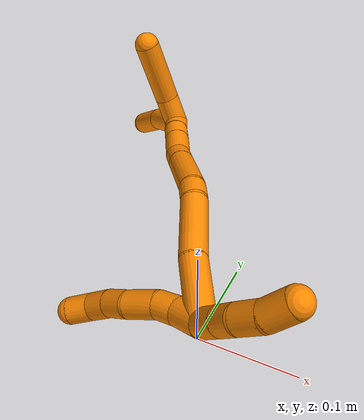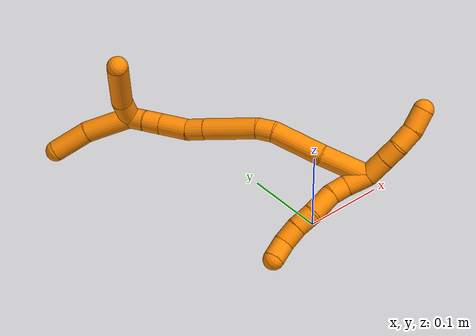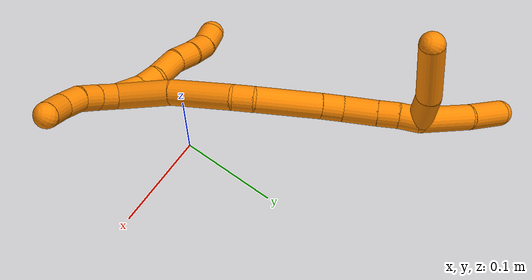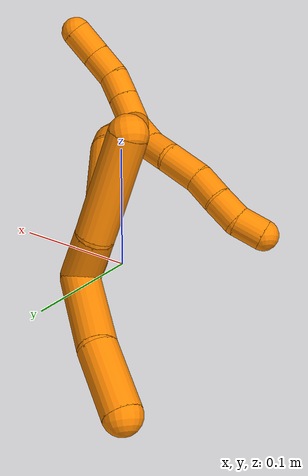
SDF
<sdf version="1.7">
 <world name="default">
  <model name="19">
   <static>0</static>
   <link name="19">
    <collision name="collision-cylinder-e_1_2_8">
     <pose>-0.007769 0.00137 -0.011622 -3.02426 -0.586059 2.75708</pose>
     <geometry><cylinder><radius>0.0125</radius><length>0.028093</length></cylinder></geometry>
     <surface>
      <friction><ode><mu>1.16</mu><mu2>1.16</mu2><slip1>0</slip1><slip2>0</slip2></ode></friction>
      <contact><ode><kp>1e+06</kp><kd>1</kd><max_vel>0</max_vel><min_depth>0.001</min_depth></ode></contact>
     </surface>
    </collision>
    <visual name="visual-cylinder-e_1_2_8">
     <pose>-0.007769 0.00137 -0.011622 -3.02426 -0.586059 2.75708</pose>
     <geometry><cylinder><radius>0.0125</radius><length>0.028093</length></cylinder></geometry>
     <material><ambient>0.996078 0.537255 0 1</ambient></material>
    </visual>
    <collision name="collision-cylinder-e_2_8_9">
     <pose>-0.02268 0.002259 -0.030511 3.07553 -0.77564 -2.98017</pose>
     <geometry><cylinder><radius>0.0125</radius><length>0.020401</length></cylinder></geometry>
     <surface>
      <friction><ode><mu>1.16</mu><mu2>1.16</mu2><slip1>0</slip1><slip2>0</slip2></ode></friction>
      <contact><ode><kp>1e+06</kp><kd>1</kd><max_vel>0</max_vel><min_depth>0.001</min_depth></ode></contact>
     </surface>
    </collision>
    <visual name="visual-cylinder-e_2_8_9">
     <pose>-0.02268 0.002259 -0.030511 3.07553 -0.77564 -2.98017</pose>
     <geometry><cylinder><radius>0.0125</radius><length>0.020401</length></cylinder></geometry>
     <material><ambient>0.996078 0.537255 0 1</ambient></material>
    </visual>
    <collision name="collision-cylinder-e_3_9_10">
     <pose>-0.039426 -0.002815 -0.048915 2.75043 -0.673048 -2.11103</pose>
     <geometry><cylinder><radius>0.0125</radius><length>0.030813</length></cylinder></geometry>
     <surface>
      <friction><ode><mu>1.16</mu><mu2>1.16</mu2><slip1>0</slip1><slip2>0</slip2></ode></friction>
      <contact><ode><kp>1e+06</kp><kd>1</kd><max_vel>0</max_vel><min_depth>0.001</min_depth></ode></contact>
     </surface>
    </collision>
    <visual name="visual-cylinder-e_3_9_10">
     <pose>-0.039426 -0.002815 -0.048915 2.75043 -0.673048 -2.11103</pose>
     <geometry><cylinder><radius>0.0125</radius><length>0.030813</length></cylinder></geometry>
     <material><ambient>0.996078 0.537255 0 1</ambient></material>
    </visual>
    <collision name="collision-cylinder-e_4_10_11">
     <pose>-0.054876 -0.009409 -0.070383 2.95021 -0.507025 -2.43201</pose>
     <geometry><cylinder><radius>0.0125</radius><length>0.024075</length></cylinder></geometry>
     <surface>
      <friction><ode><mu>1.16</mu><mu2>1.16</mu2><slip1>0</slip1><slip2>0</slip2></ode></friction>
      <contact><ode><kp>1e+06</kp><kd>1</kd><max_vel>0</max_vel><min_depth>0.001</min_depth></ode></contact>
     </surface>
    </collision>
    <visual name="visual-cylinder-e_4_10_11">
     <pose>-0.054876 -0.009409 -0.070383 2.95021 -0.507025 -2.43201</pose>
     <geometry><cylinder><radius>0.0125</radius><length>0.024075</length></cylinder></geometry>
     <material><ambient>0.996078 0.537255 0 1</ambient></material>
    </visual>
    <collision name="collision-cylinder-e_5_11_12">
     <pose>-0.065944 -0.015256 -0.090439 2.76508 -0.463269 -1.78274</pose>
     <geometry><cylinder><radius>0.0125</radius><length>0.023379</length></cylinder></geometry>
     <surface>
      <friction><ode><mu>1.16</mu><mu2>1.16</mu2><slip1>0</slip1><slip2>0</slip2></ode></friction>
      <contact><ode><kp>1e+06</kp><kd>1</kd><max_vel>0</max_vel><min_depth>0.001</min_depth></ode></contact>
     </surface>
    </collision>
    <visual name="visual-cylinder-e_5_11_12">
     <pose>-0.065944 -0.015256 -0.090439 2.76508 -0.463269 -1.78274</pose>
     <geometry><cylinder><radius>0.0125</radius><length>0.023379</length></cylinder></geometry>
     <material><ambient>0.996078 0.537255 0 1</ambient></material>
    </visual>
    <collision name="collision-cylinder-e_6_12_6">
     <pose>-0.078343 -0.024848 -0.10727 2.46154 -0.665521 -1.54748</pose>
     <geometry><cylinder><radius>0.0125</radius><length>0.023238</length></cylinder></geometry>
     <surface>
      <friction><ode><mu>1.16</mu><mu2>1.16</mu2><slip1>0</slip1><slip2>0</slip2></ode></friction>
      <contact><ode><kp>1e+06</kp><kd>1</kd><max_vel>0</max_vel><min_depth>0.001</min_depth></ode></contact>
     </surface>
    </collision>
    <visual name="visual-cylinder-e_6_12_6">
     <pose>-0.078343 -0.024848 -0.10727 2.46154 -0.665521 -1.54748</pose>
     <geometry><cylinder><radius>0.0125</radius><length>0.023238</length></cylinder></geometry>
     <material><ambient>0.996078 0.537255 0 1</ambient></material>
    </visual>
    <collision name="collision-cylinder-e_1_2_13">
     <pose>0.002802 0.001803 0.013222 -0.13552 0.206964 -0.014096</pose>
     <geometry><cylinder><radius>0.0125</radius><length>0.02727</length></cylinder></geometry>
     <surface>
      <friction><ode><mu>1.16</mu><mu2>1.16</mu2><slip1>0</slip1><slip2>0</slip2></ode></friction>
      <contact><ode><kp>1e+06</kp><kd>1</kd><max_vel>0</max_vel><min_depth>0.001</min_depth></ode></contact>
     </surface>
    </collision>
    <visual name="visual-cylinder-e_1_2_13">
     <pose>0.002802 0.001803 0.013222 -0.13552 0.206964 -0.014096</pose>
     <geometry><cylinder><radius>0.0125</radius><length>0.02727</length></cylinder></geometry>
     <material><ambient>0.996078 0.537255 0 1</ambient></material>
    </visual>
    <collision name="collision-cylinder-e_2_13_14">
     <pose>0.007892 0.005229 0.036821 -0.155203 0.214502 -0.016743</pose>
     <geometry><cylinder><radius>0.0125</radius><length>0.021502</length></cylinder></geometry>
     <surface>
      <friction><ode><mu>1.16</mu><mu2>1.16</mu2><slip1>0</slip1><slip2>0</slip2></ode></friction>
      <contact><ode><kp>1e+06</kp><kd>1</kd><max_vel>0</max_vel><min_depth>0.001</min_depth></ode></contact>
     </surface>
    </collision>
    <visual name="visual-cylinder-e_2_13_14">
     <pose>0.007892 0.005229 0.036821 -0.155203 0.214502 -0.016743</pose>
     <geometry><cylinder><radius>0.0125</radius><length>0.021502</length></cylinder></geometry>
     <material><ambient>0.996078 0.537255 0 1</ambient></material>
    </visual>
    <collision name="collision-cylinder-e_3_14_15">
     <pose>0.015216 0.010308 0.057877 -0.312969 0.42177 -0.067523</pose>
     <geometry><cylinder><radius>0.0125</radius><length>0.024601</length></cylinder></geometry>
     <surface>
      <friction><ode><mu>1.16</mu><mu2>1.16</mu2><slip1>0</slip1><slip2>0</slip2></ode></friction>
      <contact><ode><kp>1e+06</kp><kd>1</kd><max_vel>0</max_vel><min_depth>0.001</min_depth></ode></contact>
     </surface>
    </collision>
    <visual name="visual-cylinder-e_3_14_15">
     <pose>0.015216 0.010308 0.057877 -0.312969 0.42177 -0.067523</pose>
     <geometry><cylinder><radius>0.0125</radius><length>0.024601</length></cylinder></geometry>
     <material><ambient>0.996078 0.537255 0 1</ambient></material>
    </visual>
    <collision name="collision-cylinder-e_4_15_5">
     <pose>0.024236 0.020319 0.079436 -0.542192 0.303971 -0.085091</pose>
     <geometry><cylinder><radius>0.0125</radius><length>0.026628</length></cylinder></geometry>
     <surface>
      <friction><ode><mu>1.16</mu><mu2>1.16</mu2><slip1>0</slip1><slip2>0</slip2></ode></friction>
      <contact><ode><kp>1e+06</kp><kd>1</kd><max_vel>0</max_vel><min_depth>0.001</min_depth></ode></contact>
     </surface>
    </collision>
    <visual name="visual-cylinder-e_4_15_5">
     <pose>0.024236 0.020319 0.079436 -0.542192 0.303971 -0.085091</pose>
     <geometry><cylinder><radius>0.0125</radius><length>0.026628</length></cylinder></geometry>
     <material><ambient>0.996078 0.537255 0 1</ambient></material>
    </visual>
    <collision name="collision-cylinder-e_1_2_16">
     <pose>-0.012884 0.022976 -0.011428 -2.03234 -0.465307 0.73063</pose>
     <geometry><cylinder><radius>0.0125</radius><length>0.057427</length></cylinder></geometry>
     <surface>
      <friction><ode><mu>1.16</mu><mu2>1.16</mu2><slip1>0</slip1><slip2>0</slip2></ode></friction>
      <contact><ode><kp>1e+06</kp><kd>1</kd><max_vel>0</max_vel><min_depth>0.001</min_depth></ode></contact>
     </surface>
    </collision>
    <visual name="visual-cylinder-e_1_2_16">
     <pose>-0.012884 0.022976 -0.011428 -2.03234 -0.465307 0.73063</pose>
     <geometry><cylinder><radius>0.0125</radius><length>0.057427</length></cylinder></geometry>
     <material><ambient>0.996078 0.537255 0 1</ambient></material>
    </visual>
    <collision name="collision-cylinder-e_2_16_17">
     <pose>-0.035533 0.072202 -0.036122 -2.03875 -0.320566 0.514071</pose>
     <geometry><cylinder><radius>0.0125</radius><length>0.061982</length></cylinder></geometry>
     <surface>
      <friction><ode><mu>1.16</mu><mu2>1.16</mu2><slip1>0</slip1><slip2>0</slip2></ode></friction>
      <contact><ode><kp>1e+06</kp><kd>1</kd><max_vel>0</max_vel><min_depth>0.001</min_depth></ode></contact>
     </surface>
    </collision>
    <visual name="visual-cylinder-e_2_16_17">
     <pose>-0.035533 0.072202 -0.036122 -2.03875 -0.320566 0.514071</pose>
     <geometry><cylinder><radius>0.0125</radius><length>0.061982</length></cylinder></geometry>
     <material><ambient>0.996078 0.537255 0 1</ambient></material>
    </visual>
    <collision name="collision-cylinder-e_3_17_18">
     <pose>-0.048283 0.105689 -0.055813 -2.29682 -0.299205 0.647168</pose>
     <geometry><cylinder><radius>0.0125</radius><length>0.020253</length></cylinder></geometry>
     <surface>
      <friction><ode><mu>1.16</mu><mu2>1.16</mu2><slip1>0</slip1><slip2>0</slip2></ode></friction>
      <contact><ode><kp>1e+06</kp><kd>1</kd><max_vel>0</max_vel><min_depth>0.001</min_depth></ode></contact>
     </surface>
    </collision>
    <visual name="visual-cylinder-e_3_17_18">
     <pose>-0.048283 0.105689 -0.055813 -2.29682 -0.299205 0.647168</pose>
     <geometry><cylinder><radius>0.0125</radius><length>0.020253</length></cylinder></geometry>
     <material><ambient>0.996078 0.537255 0 1</ambient></material>
    </visual>
    <collision name="collision-cylinder-e_4_18_19">
     <pose>-0.059709 0.130609 -0.087563 -2.53206 -0.266749 0.806323</pose>
     <geometry><cylinder><radius>0.0125</radius><length>0.064043</length></cylinder></geometry>
     <surface>
      <friction><ode><mu>1.16</mu><mu2>1.16</mu2><slip1>0</slip1><slip2>0</slip2></ode></friction>
      <contact><ode><kp>1e+06</kp><kd>1</kd><max_vel>0</max_vel><min_depth>0.001</min_depth></ode></contact>
     </surface>
    </collision>
    <visual name="visual-cylinder-e_4_18_19">
     <pose>-0.059709 0.130609 -0.087563 -2.53206 -0.266749 0.806323</pose>
     <geometry><cylinder><radius>0.0125</radius><length>0.064043</length></cylinder></geometry>
     <material><ambient>0.996078 0.537255 0 1</ambient></material>
    </visual>
    <collision name="collision-cylinder-e_5_19_20">
     <pose>-0.07076 0.154162 -0.12169 -2.55337 -0.24193 0.763294</pose>
     <geometry><cylinder><radius>0.0125</radius><length>0.02179</length></cylinder></geometry>
     <surface>
      <friction><ode><mu>1.16</mu><mu2>1.16</mu2><slip1>0</slip1><slip2>0</slip2></ode></friction>
      <contact><ode><kp>1e+06</kp><kd>1</kd><max_vel>0</max_vel><min_depth>0.001</min_depth></ode></contact>
     </surface>
    </collision>
    <visual name="visual-cylinder-e_5_19_20">
     <pose>-0.07076 0.154162 -0.12169 -2.55337 -0.24193 0.763294</pose>
     <geometry><cylinder><radius>0.0125</radius><length>0.02179</length></cylinder></geometry>
     <material><ambient>0.996078 0.537255 0 1</ambient></material>
    </visual>
    <collision name="collision-cylinder-e_6_20_21">
     <pose>-0.077697 0.171963 -0.141342 -2.30887 -0.262126 0.579404</pose>
     <geometry><cylinder><radius>0.0125</radius><length>0.0334</length></cylinder></geometry>
     <surface>
      <friction><ode><mu>1.16</mu><mu2>1.16</mu2><slip1>0</slip1><slip2>0</slip2></ode></friction>
      <contact><ode><kp>1e+06</kp><kd>1</kd><max_vel>0</max_vel><min_depth>0.001</min_depth></ode></contact>
     </surface>
    </collision>
    <visual name="visual-cylinder-e_6_20_21">
     <pose>-0.077697 0.171963 -0.141342 -2.30887 -0.262126 0.579404</pose>
     <geometry><cylinder><radius>0.0125</radius><length>0.0334</length></cylinder></geometry>
     <material><ambient>0.996078 0.537255 0 1</ambient></material>
    </visual>
    <collision name="collision-cylinder-e_7_21_22">
     <pose>-0.084908 0.191213 -0.158835 -2.30766 -0.283866 0.624129</pose>
     <geometry><cylinder><radius>0.0125</radius><length>0.020586</length></cylinder></geometry>
     <surface>
      <friction><ode><mu>1.16</mu><mu2>1.16</mu2><slip1>0</slip1><slip2>0</slip2></ode></friction>
      <contact><ode><kp>1e+06</kp><kd>1</kd><max_vel>0</max_vel><min_depth>0.001</min_depth></ode></contact>
     </surface>
    </collision>
    <visual name="visual-cylinder-e_7_21_22">
     <pose>-0.084908 0.191213 -0.158835 -2.30766 -0.283866 0.624129</pose>
     <geometry><cylinder><radius>0.0125</radius><length>0.020586</length></cylinder></geometry>
     <material><ambient>0.996078 0.537255 0 1</ambient></material>
    </visual>
    <collision name="collision-cylinder-e_8_22_1">
     <pose>-0.08964 0.205834 -0.172439 -2.33242 -0.181253 0.418235</pose>
     <geometry><cylinder><radius>0.0125</radius><length>0.020518</length></cylinder></geometry>
     <surface>
      <friction><ode><mu>1.16</mu><mu2>1.16</mu2><slip1>0</slip1><slip2>0</slip2></ode></friction>
      <contact><ode><kp>1e+06</kp><kd>1</kd><max_vel>0</max_vel><min_depth>0.001</min_depth></ode></contact>
     </surface>
    </collision>
    <visual name="visual-cylinder-e_8_22_1">
     <pose>-0.08964 0.205834 -0.172439 -2.33242 -0.181253 0.418235</pose>
     <geometry><cylinder><radius>0.0125</radius><length>0.020518</length></cylinder></geometry>
     <material><ambient>0.996078 0.537255 0 1</ambient></material>
    </visual>
    <collision name="collision-cylinder-e_1_1_23">
     <pose>-0.103772 0.219207 -0.170606 -0.603964 -0.854726 0.281862</pose>
     <geometry><cylinder><radius>0.0125</radius><length>0.032564</length></cylinder></geometry>
     <surface>
      <friction><ode><mu>1.16</mu><mu2>1.16</mu2><slip1>0</slip1><slip2>0</slip2></ode></friction>
      <contact><ode><kp>1e+06</kp><kd>1</kd><max_vel>0</max_vel><min_depth>0.001</min_depth></ode></contact>
     </surface>
    </collision>
    <visual name="visual-cylinder-e_1_1_23">
     <pose>-0.103772 0.219207 -0.170606 -0.603964 -0.854726 0.281862</pose>
     <geometry><cylinder><radius>0.0125</radius><length>0.032564</length></cylinder></geometry>
     <material><ambient>0.996078 0.537255 0 1</ambient></material>
    </visual>
    <collision name="collision-cylinder-e_2_23_4">
     <pose>-0.138944 0.233247 -0.138368 -0.327745 -0.746183 0.129268</pose>
     <geometry><cylinder><radius>0.0125</radius><length>0.067436</length></cylinder></geometry>
     <surface>
      <friction><ode><mu>1.16</mu><mu2>1.16</mu2><slip1>0</slip1><slip2>0</slip2></ode></friction>
      <contact><ode><kp>1e+06</kp><kd>1</kd><max_vel>0</max_vel><min_depth>0.001</min_depth></ode></contact>
     </surface>
    </collision>
    <visual name="visual-cylinder-e_2_23_4">
     <pose>-0.138944 0.233247 -0.138368 -0.327745 -0.746183 0.129268</pose>
     <geometry><cylinder><radius>0.0125</radius><length>0.067436</length></cylinder></geometry>
     <material><ambient>0.996078 0.537255 0 1</ambient></material>
    </visual>
    <collision name="collision-cylinder-e_1_1_24">
     <pose>-0.100805 0.220739 -0.204255 -2.84473 -0.344183 1.7207</pose>
     <geometry><cylinder><radius>0.0125</radius><length>0.055216</length></cylinder></geometry>
     <surface>
      <friction><ode><mu>1.16</mu><mu2>1.16</mu2><slip1>0</slip1><slip2>0</slip2></ode></friction>
      <contact><ode><kp>1e+06</kp><kd>1</kd><max_vel>0</max_vel><min_depth>0.001</min_depth></ode></contact>
     </surface>
    </collision>
    <visual name="visual-cylinder-e_1_1_24">
     <pose>-0.100805 0.220739 -0.204255 -2.84473 -0.344183 1.7207</pose>
     <geometry><cylinder><radius>0.0125</radius><length>0.055216</length></cylinder></geometry>
     <material><ambient>0.996078 0.537255 0 1</ambient></material>
    </visual>
    <collision name="collision-cylinder-e_2_24_3">
     <pose>-0.117218 0.229828 -0.250293 -3.07153 -0.322529 2.71721</pose>
     <geometry><cylinder><radius>0.0125</radius><length>0.044784</length></cylinder></geometry>
     <surface>
      <friction><ode><mu>1.16</mu><mu2>1.16</mu2><slip1>0</slip1><slip2>0</slip2></ode></friction>
      <contact><ode><kp>1e+06</kp><kd>1</kd><max_vel>0</max_vel><min_depth>0.001</min_depth></ode></contact>
     </surface>
    </collision>
    <visual name="visual-cylinder-e_2_24_3">
     <pose>-0.117218 0.229828 -0.250293 -3.07153 -0.322529 2.71721</pose>
     <geometry><cylinder><radius>0.0125</radius><length>0.044784</length></cylinder></geometry>
     <material><ambient>0.996078 0.537255 0 1</ambient></material>
    </visual>
    <collision name="collision-sphere-3">
     <pose>-0.124316 0.231315 -0.271478 0 -0 0</pose>
     <geometry><sphere><radius>0.0125</radius></sphere></geometry>
     <surface>
      <friction><ode><mu>1.16</mu><mu2>1.16</mu2><slip1>0</slip1><slip2>0</slip2></ode></friction>
      <contact><ode><kp>1e+06</kp><kd>1</kd><max_vel>0</max_vel><min_depth>0.001</min_depth></ode></contact>
     </surface>
    </collision>
    <visual name="visual-sphere-3">
     <pose>-0.124316 0.231315 -0.271478 0 -0 0</pose>
     <geometry><sphere><radius>0.0125</radius></sphere></geometry>
     <material><ambient>0.996078 0.537255 0 1</ambient></material>
    </visual>
    <collision name="collision-sphere-24">
     <pose>-0.110121 0.228342 -0.229108 0 -0 0</pose>
     <geometry><sphere><radius>0.0125</radius></sphere></geometry>
     <surface>
      <friction><ode><mu>1.16</mu><mu2>1.16</mu2><slip1>0</slip1><slip2>0</slip2></ode></friction>
      <contact><ode><kp>1e+06</kp><kd>1</kd><max_vel>0</max_vel><min_depth>0.001</min_depth></ode></contact>
     </surface>
    </collision>
    <visual name="visual-sphere-24">
     <pose>-0.110121 0.228342 -0.229108 0 -0 0</pose>
     <geometry><sphere><radius>0.0125</radius></sphere></geometry>
     <material><ambient>0.996078 0.537255 0 1</ambient></material>
    </visual>
    <collision name="collision-sphere-4">
     <pose>-0.161834 0.241217 -0.114927 0 -0 0</pose>
     <geometry><sphere><radius>0.0125</radius></sphere></geometry>
     <surface>
      <friction><ode><mu>1.16</mu><mu2>1.16</mu2><slip1>0</slip1><slip2>0</slip2></ode></friction>
      <contact><ode><kp>1e+06</kp><kd>1</kd><max_vel>0</max_vel><min_depth>0.001</min_depth></ode></contact>
     </surface>
    </collision>
    <visual name="visual-sphere-4">
     <pose>-0.161834 0.241217 -0.114927 0 -0 0</pose>
     <geometry><sphere><radius>0.0125</radius></sphere></geometry>
     <material><ambient>0.996078 0.537255 0 1</ambient></material>
    </visual>
    <collision name="collision-sphere-23">
     <pose>-0.116055 0.225277 -0.161809 0 -0 0</pose>
     <geometry><sphere><radius>0.0125</radius></sphere></geometry>
     <surface>
      <friction><ode><mu>1.16</mu><mu2>1.16</mu2><slip1>0</slip1><slip2>0</slip2></ode></friction>
      <contact><ode><kp>1e+06</kp><kd>1</kd><max_vel>0</max_vel><min_depth>0.001</min_depth></ode></contact>
     </surface>
    </collision>
    <visual name="visual-sphere-23">
     <pose>-0.116055 0.225277 -0.161809 0 -0 0</pose>
     <geometry><sphere><radius>0.0125</radius></sphere></geometry>
     <material><ambient>0.996078 0.537255 0 1</ambient></material>
    </visual>
    <collision name="collision-sphere-1">
     <pose>-0.091489 0.213137 -0.179403 0 -0 0</pose>
     <geometry><sphere><radius>0.0125</radius></sphere></geometry>
     <surface>
      <friction><ode><mu>1.16</mu><mu2>1.16</mu2><slip1>0</slip1><slip2>0</slip2></ode></friction>
      <contact><ode><kp>1e+06</kp><kd>1</kd><max_vel>0</max_vel><min_depth>0.001</min_depth></ode></contact>
     </surface>
    </collision>
    <visual name="visual-sphere-1">
     <pose>-0.091489 0.213137 -0.179403 0 -0 0</pose>
     <geometry><sphere><radius>0.0125</radius></sphere></geometry>
     <material><ambient>0.996078 0.537255 0 1</ambient></material>
    </visual>
    <collision name="collision-sphere-22">
     <pose>-0.087791 0.198531 -0.165475 0 -0 0</pose>
     <geometry><sphere><radius>0.0125</radius></sphere></geometry>
     <surface>
      <friction><ode><mu>1.16</mu><mu2>1.16</mu2><slip1>0</slip1><slip2>0</slip2></ode></friction>
      <contact><ode><kp>1e+06</kp><kd>1</kd><max_vel>0</max_vel><min_depth>0.001</min_depth></ode></contact>
     </surface>
    </collision>
    <visual name="visual-sphere-22">
     <pose>-0.087791 0.198531 -0.165475 0 -0 0</pose>
     <geometry><sphere><radius>0.0125</radius></sphere></geometry>
     <material><ambient>0.996078 0.537255 0 1</ambient></material>
    </visual>
    <collision name="collision-sphere-21">
     <pose>-0.082025 0.183895 -0.152195 0 -0 0</pose>
     <geometry><sphere><radius>0.0125</radius></sphere></geometry>
     <surface>
      <friction><ode><mu>1.16</mu><mu2>1.16</mu2><slip1>0</slip1><slip2>0</slip2></ode></friction>
      <contact><ode><kp>1e+06</kp><kd>1</kd><max_vel>0</max_vel><min_depth>0.001</min_depth></ode></contact>
     </surface>
    </collision>
    <visual name="visual-sphere-21">
     <pose>-0.082025 0.183895 -0.152195 0 -0 0</pose>
     <geometry><sphere><radius>0.0125</radius></sphere></geometry>
     <material><ambient>0.996078 0.537255 0 1</ambient></material>
    </visual>
    <collision name="collision-sphere-12">
     <pose>-0.071168 -0.019101 -0.100164 0 -0 0</pose>
     <geometry><sphere><radius>0.0125</radius></sphere></geometry>
     <surface>
      <friction><ode><mu>1.16</mu><mu2>1.16</mu2><slip1>0</slip1><slip2>0</slip2></ode></friction>
      <contact><ode><kp>1e+06</kp><kd>1</kd><max_vel>0</max_vel><min_depth>0.001</min_depth></ode></contact>
     </surface>
    </collision>
    <visual name="visual-sphere-12">
     <pose>-0.071168 -0.019101 -0.100164 0 -0 0</pose>
     <geometry><sphere><radius>0.0125</radius></sphere></geometry>
     <material><ambient>0.996078 0.537255 0 1</ambient></material>
    </visual>
    <collision name="collision-sphere-11">
     <pose>-0.060721 -0.011411 -0.080714 0 -0 0</pose>
     <geometry><sphere><radius>0.0125</radius></sphere></geometry>
     <surface>
      <friction><ode><mu>1.16</mu><mu2>1.16</mu2><slip1>0</slip1><slip2>0</slip2></ode></friction>
      <contact><ode><kp>1e+06</kp><kd>1</kd><max_vel>0</max_vel><min_depth>0.001</min_depth></ode></contact>
     </surface>
    </collision>
    <visual name="visual-sphere-11">
     <pose>-0.060721 -0.011411 -0.080714 0 -0 0</pose>
     <geometry><sphere><radius>0.0125</radius></sphere></geometry>
     <material><ambient>0.996078 0.537255 0 1</ambient></material>
    </visual>
    <collision name="collision-sphere-10">
     <pose>-0.04903 -0.007408 -0.060052 0 -0 0</pose>
     <geometry><sphere><radius>0.0125</radius></sphere></geometry>
     <surface>
      <friction><ode><mu>1.16</mu><mu2>1.16</mu2><slip1>0</slip1><slip2>0</slip2></ode></friction>
      <contact><ode><kp>1e+06</kp><kd>1</kd><max_vel>0</max_vel><min_depth>0.001</min_depth></ode></contact>
     </surface>
    </collision>
    <visual name="visual-sphere-10">
     <pose>-0.04903 -0.007408 -0.060052 0 -0 0</pose>
     <geometry><sphere><radius>0.0125</radius></sphere></geometry>
     <material><ambient>0.996078 0.537255 0 1</ambient></material>
    </visual>
    <collision name="collision-sphere-9">
     <pose>-0.029822 0.001778 -0.037779 0 -0 0</pose>
     <geometry><sphere><radius>0.0125</radius></sphere></geometry>
     <surface>
      <friction><ode><mu>1.16</mu><mu2>1.16</mu2><slip1>0</slip1><slip2>0</slip2></ode></friction>
      <contact><ode><kp>1e+06</kp><kd>1</kd><max_vel>0</max_vel><min_depth>0.001</min_depth></ode></contact>
     </surface>
    </collision>
    <visual name="visual-sphere-9">
     <pose>-0.029822 0.001778 -0.037779 0 -0 0</pose>
     <geometry><sphere><radius>0.0125</radius></sphere></geometry>
     <material><ambient>0.996078 0.537255 0 1</ambient></material>
    </visual>
    <collision name="collision-sphere-2">
     <geometry><sphere><radius>0.0125</radius></sphere></geometry>
     <surface>
      <friction><ode><mu>1.16</mu><mu2>1.16</mu2><slip1>0</slip1><slip2>0</slip2></ode></friction>
      <contact><ode><kp>1e+06</kp><kd>1</kd><max_vel>0</max_vel><min_depth>0.001</min_depth></ode></contact>
     </surface>
    </collision>
    <visual name="visual-sphere-2">
     <geometry><sphere><radius>0.0125</radius></sphere></geometry>
     <material><ambient>0.996078 0.537255 0 1</ambient></material>
    </visual>
    <collision name="collision-sphere-19">
     <pose>-0.06815 0.148292 -0.11289 0 -0 0</pose>
     <geometry><sphere><radius>0.0125</radius></sphere></geometry>
     <surface>
      <friction><ode><mu>1.16</mu><mu2>1.16</mu2><slip1>0</slip1><slip2>0</slip2></ode></friction>
      <contact><ode><kp>1e+06</kp><kd>1</kd><max_vel>0</max_vel><min_depth>0.001</min_depth></ode></contact>
     </surface>
    </collision>
    <visual name="visual-sphere-19">
     <pose>-0.06815 0.148292 -0.11289 0 -0 0</pose>
     <geometry><sphere><radius>0.0125</radius></sphere></geometry>
     <material><ambient>0.996078 0.537255 0 1</ambient></material>
    </visual>
    <collision name="collision-sphere-8">
     <pose>-0.015538 0.00274 -0.023244 0 -0 0</pose>
     <geometry><sphere><radius>0.0125</radius></sphere></geometry>
     <surface>
      <friction><ode><mu>1.16</mu><mu2>1.16</mu2><slip1>0</slip1><slip2>0</slip2></ode></friction>
      <contact><ode><kp>1e+06</kp><kd>1</kd><max_vel>0</max_vel><min_depth>0.001</min_depth></ode></contact>
     </surface>
    </collision>
    <visual name="visual-sphere-8">
     <pose>-0.015538 0.00274 -0.023244 0 -0 0</pose>
     <geometry><sphere><radius>0.0125</radius></sphere></geometry>
     <material><ambient>0.996078 0.537255 0 1</ambient></material>
    </visual>
    <collision name="collision-sphere-6">
     <pose>-0.085517 -0.030596 -0.114377 0 -0 0</pose>
     <geometry><sphere><radius>0.0125</radius></sphere></geometry>
     <surface>
      <friction><ode><mu>1.16</mu><mu2>1.16</mu2><slip1>0</slip1><slip2>0</slip2></ode></friction>
      <contact><ode><kp>1e+06</kp><kd>1</kd><max_vel>0</max_vel><min_depth>0.001</min_depth></ode></contact>
     </surface>
    </collision>
    <visual name="visual-sphere-6">
     <pose>-0.085517 -0.030596 -0.114377 0 -0 0</pose>
     <geometry><sphere><radius>0.0125</radius></sphere></geometry>
     <material><ambient>0.996078 0.537255 0 1</ambient></material>
    </visual>
    <collision name="collision-sphere-13">
     <pose>0.005604 0.003606 0.026443 0 -0 0</pose>
     <geometry><sphere><radius>0.0125</radius></sphere></geometry>
     <surface>
      <friction><ode><mu>1.16</mu><mu2>1.16</mu2><slip1>0</slip1><slip2>0</slip2></ode></friction>
      <contact><ode><kp>1e+06</kp><kd>1</kd><max_vel>0</max_vel><min_depth>0.001</min_depth></ode></contact>
     </surface>
    </collision>
    <visual name="visual-sphere-13">
     <pose>0.005604 0.003606 0.026443 0 -0 0</pose>
     <geometry><sphere><radius>0.0125</radius></sphere></geometry>
     <material><ambient>0.996078 0.537255 0 1</ambient></material>
    </visual>
    <collision name="collision-sphere-14">
     <pose>0.010181 0.006853 0.047199 0 -0 0</pose>
     <geometry><sphere><radius>0.0125</radius></sphere></geometry>
     <surface>
      <friction><ode><mu>1.16</mu><mu2>1.16</mu2><slip1>0</slip1><slip2>0</slip2></ode></friction>
      <contact><ode><kp>1e+06</kp><kd>1</kd><max_vel>0</max_vel><min_depth>0.001</min_depth></ode></contact>
     </surface>
    </collision>
    <visual name="visual-sphere-14">
     <pose>0.010181 0.006853 0.047199 0 -0 0</pose>
     <geometry><sphere><radius>0.0125</radius></sphere></geometry>
     <material><ambient>0.996078 0.537255 0 1</ambient></material>
    </visual>
    <collision name="collision-sphere-15">
     <pose>0.020251 0.013764 0.068554 0 -0 0</pose>
     <geometry><sphere><radius>0.0125</radius></sphere></geometry>
     <surface>
      <friction><ode><mu>1.16</mu><mu2>1.16</mu2><slip1>0</slip1><slip2>0</slip2></ode></friction>
      <contact><ode><kp>1e+06</kp><kd>1</kd><max_vel>0</max_vel><min_depth>0.001</min_depth></ode></contact>
     </surface>
    </collision>
    <visual name="visual-sphere-15">
     <pose>0.020251 0.013764 0.068554 0 -0 0</pose>
     <geometry><sphere><radius>0.0125</radius></sphere></geometry>
     <material><ambient>0.996078 0.537255 0 1</ambient></material>
    </visual>
    <collision name="collision-sphere-5">
     <pose>0.028221 0.026874 0.090317 0 -0 0</pose>
     <geometry><sphere><radius>0.0125</radius></sphere></geometry>
     <surface>
      <friction><ode><mu>1.16</mu><mu2>1.16</mu2><slip1>0</slip1><slip2>0</slip2></ode></friction>
      <contact><ode><kp>1e+06</kp><kd>1</kd><max_vel>0</max_vel><min_depth>0.001</min_depth></ode></contact>
     </surface>
    </collision>
    <visual name="visual-sphere-5">
     <pose>0.028221 0.026874 0.090317 0 -0 0</pose>
     <geometry><sphere><radius>0.0125</radius></sphere></geometry>
     <material><ambient>0.996078 0.537255 0 1</ambient></material>
    </visual>
    <collision name="collision-sphere-16">
     <pose>-0.025767 0.045952 -0.022855 0 -0 0</pose>
     <geometry><sphere><radius>0.0125</radius></sphere></geometry>
     <surface>
      <friction><ode><mu>1.16</mu><mu2>1.16</mu2><slip1>0</slip1><slip2>0</slip2></ode></friction>
      <contact><ode><kp>1e+06</kp><kd>1</kd><max_vel>0</max_vel><min_depth>0.001</min_depth></ode></contact>
     </surface>
    </collision>
    <visual name="visual-sphere-16">
     <pose>-0.025767 0.045952 -0.022855 0 -0 0</pose>
     <geometry><sphere><radius>0.0125</radius></sphere></geometry>
     <material><ambient>0.996078 0.537255 0 1</ambient></material>
    </visual>
    <collision name="collision-sphere-17">
     <pose>-0.045298 0.098453 -0.049388 0 -0 0</pose>
     <geometry><sphere><radius>0.0125</radius></sphere></geometry>
     <surface>
      <friction><ode><mu>1.16</mu><mu2>1.16</mu2><slip1>0</slip1><slip2>0</slip2></ode></friction>
      <contact><ode><kp>1e+06</kp><kd>1</kd><max_vel>0</max_vel><min_depth>0.001</min_depth></ode></contact>
     </surface>
    </collision>
    <visual name="visual-sphere-17">
     <pose>-0.045298 0.098453 -0.049388 0 -0 0</pose>
     <geometry><sphere><radius>0.0125</radius></sphere></geometry>
     <material><ambient>0.996078 0.537255 0 1</ambient></material>
    </visual>
    <collision name="collision-sphere-18">
     <pose>-0.051268 0.112925 -0.062237 0 -0 0</pose>
     <geometry><sphere><radius>0.0125</radius></sphere></geometry>
     <surface>
      <friction><ode><mu>1.16</mu><mu2>1.16</mu2><slip1>0</slip1><slip2>0</slip2></ode></friction>
      <contact><ode><kp>1e+06</kp><kd>1</kd><max_vel>0</max_vel><min_depth>0.001</min_depth></ode></contact>
     </surface>
    </collision>
    <visual name="visual-sphere-18">
     <pose>-0.051268 0.112925 -0.062237 0 -0 0</pose>
     <geometry><sphere><radius>0.0125</radius></sphere></geometry>
     <material><ambient>0.996078 0.537255 0 1</ambient></material>
    </visual>
    <collision name="collision-sphere-20">
     <pose>-0.07337 0.160031 -0.130489 0 -0 0</pose>
     <geometry><sphere><radius>0.0125</radius></sphere></geometry>
     <surface>
      <friction><ode><mu>1.16</mu><mu2>1.16</mu2><slip1>0</slip1><slip2>0</slip2></ode></friction>
      <contact><ode><kp>1e+06</kp><kd>1</kd><max_vel>0</max_vel><min_depth>0.001</min_depth></ode></contact>
     </surface>
    </collision>
    <visual name="visual-sphere-20">
     <pose>-0.07337 0.160031 -0.130489 0 -0 0</pose>
     <geometry><sphere><radius>0.0125</radius></sphere></geometry>
     <material><ambient>0.996078 0.537255 0 1</ambient></material>
    </visual>
    <inertial>
     <pose>-0.059128 0.104939 -0.087006 0 -0 0</pose>
     <mass>0.75</mass>
     <inertia>
      <ixx>0.00011</ixx>
      <ixy>0</ixy>
      <ixz>0</ixz>
      <iyy>0.000118</iyy>
      <iyz>0</iyz>
      <izz>-2.5e-05</izz>
     </inertia>
    </inertial>
   </link>
   <pose>0.030271 -0.058461 0.095156 0.556134 0.499194 0.182961</pose>
  </model>
 </world>
</sdf>
